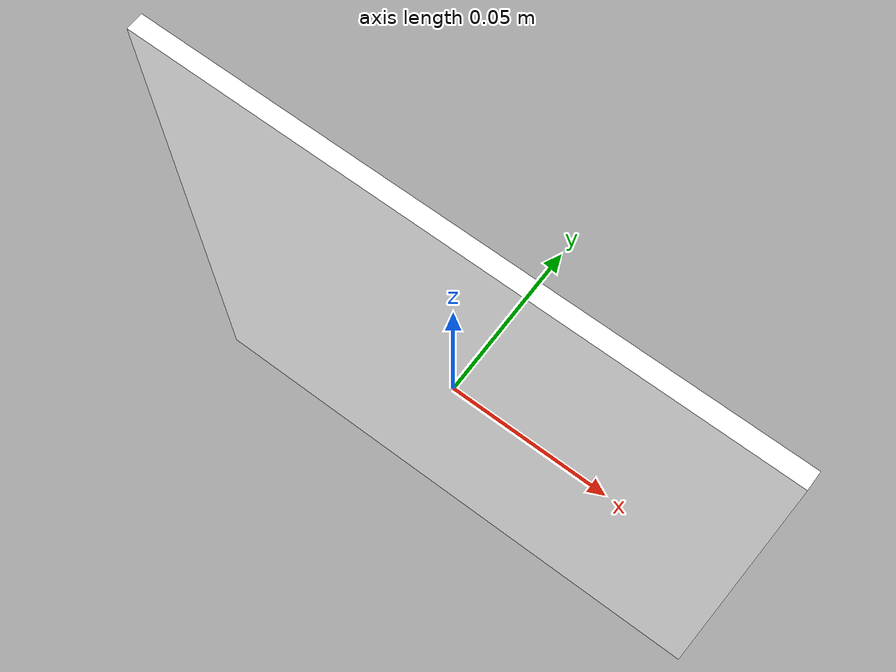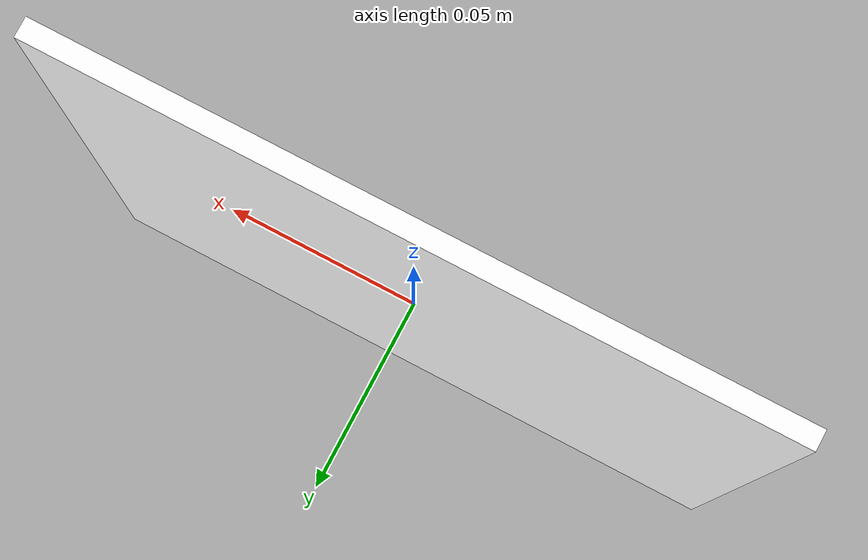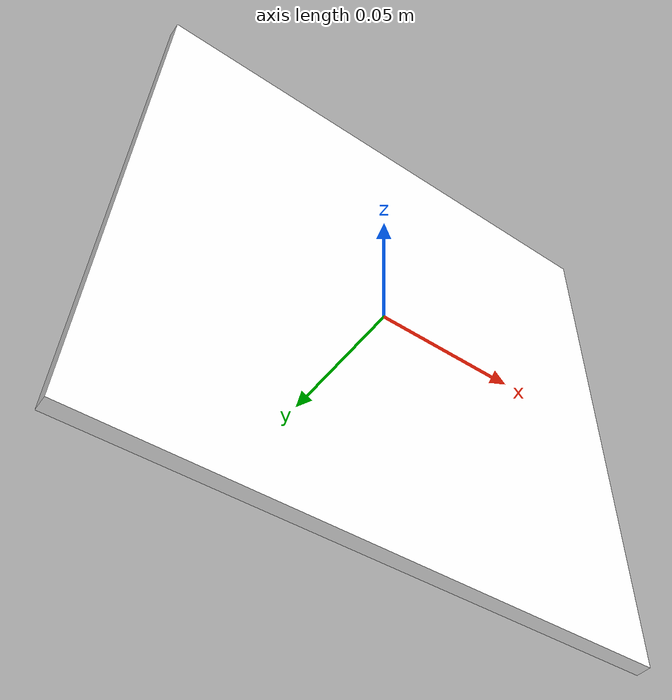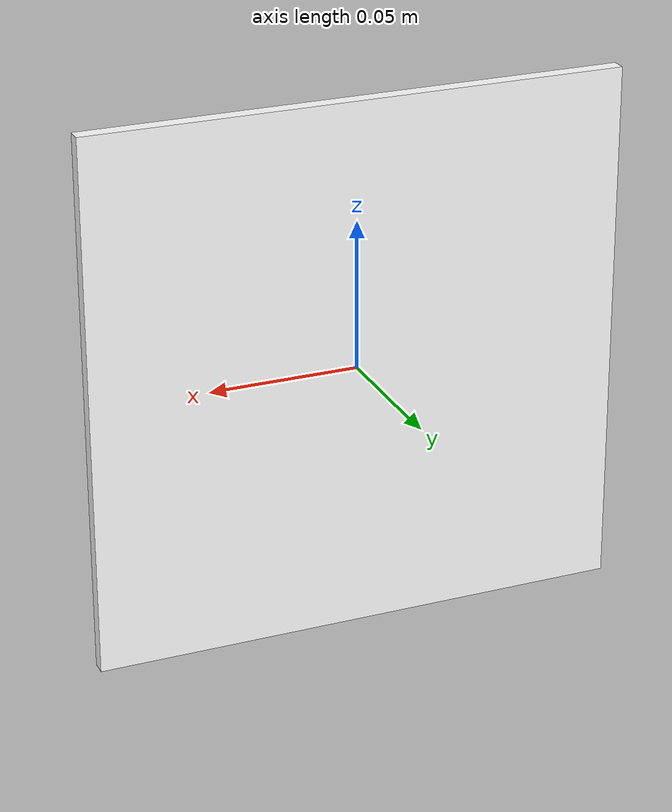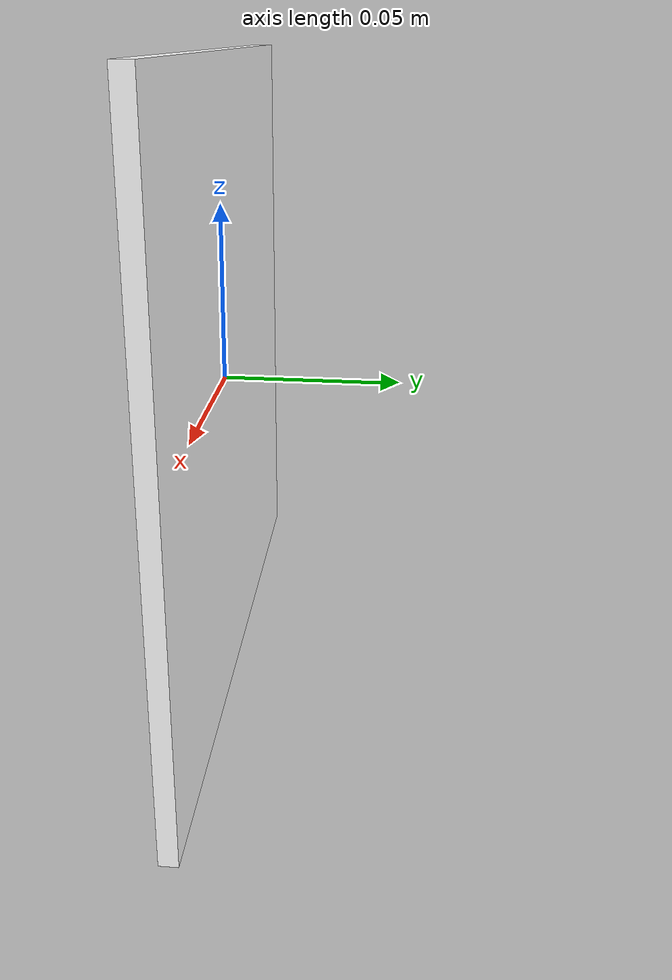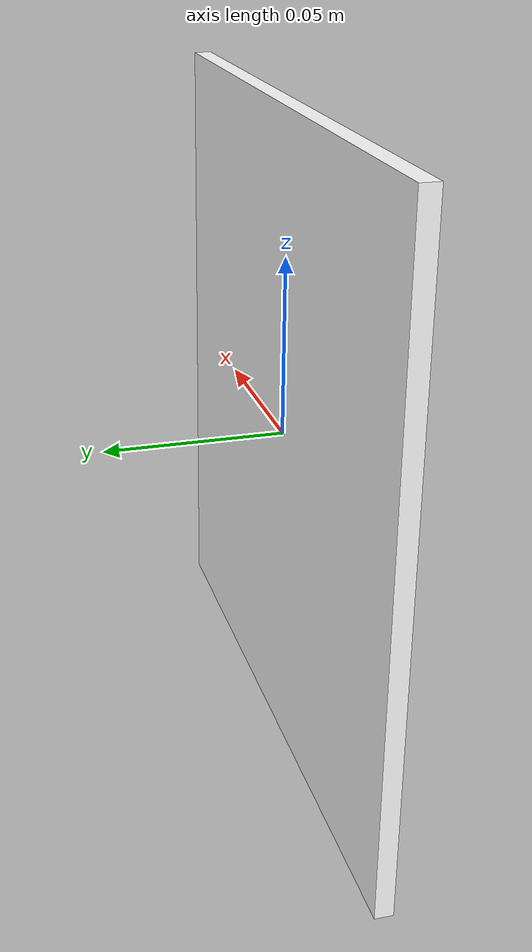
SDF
<?xml version="1.0" ?>
<sdf version="1.7">
  <model name="aruco_visual_marker_4_pad">
    <static>true</static>
    <link name="marker">
      <pose>0 0 0 0 0 0</pose>
      <collision name="collision">
        <geometry>
          <box>
            <size>0.18 0.005 0.18</size>
          </box>
        </geometry>
      </collision>
      <visual name="visual">
        <geometry>
          <box>
            <size>0.18 0.005 0.18</size>
          </box>
        </geometry>
        <material>
          <ambient>1 1 1 1</ambient>
          <diffuse>1 1 1 1</diffuse>
          <specular>0 0 0 1</specular>
          <emissive>0 0 0 1</emissive>
          <double_sided>true</double_sided>
          <pbr>
            <metal>
              <metalness>0.0</metalness>
              <roughness>0.6</roughness>
              <albedo_map>model://aruco_visual_marker_4_pad/materials/textures/aruco_mark_4_num.png</albedo_map>
            </metal>
          </pbr>
        </material>
      </visual>
    </link>
  </model>
</sdf>
